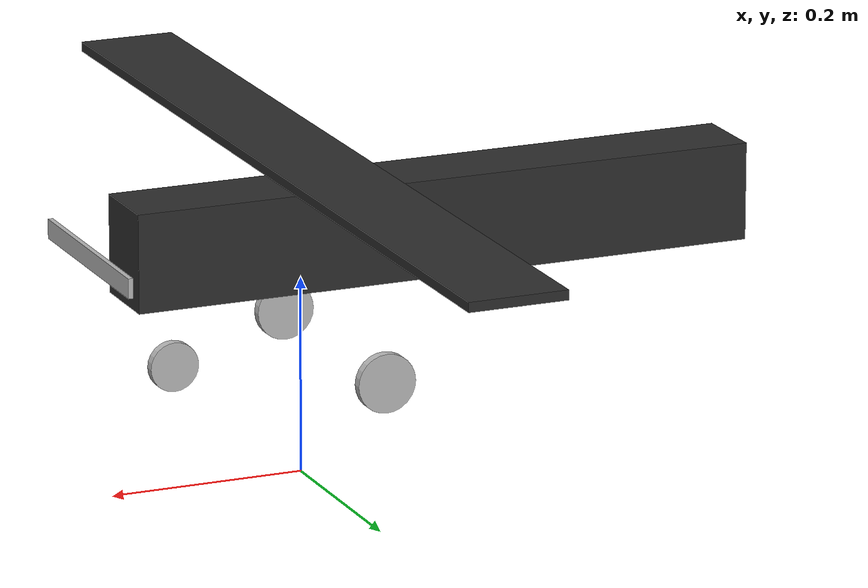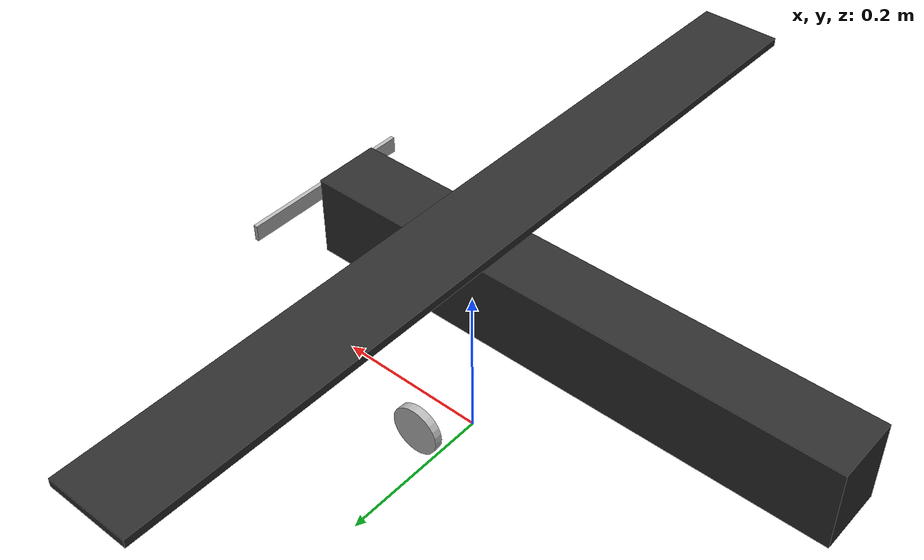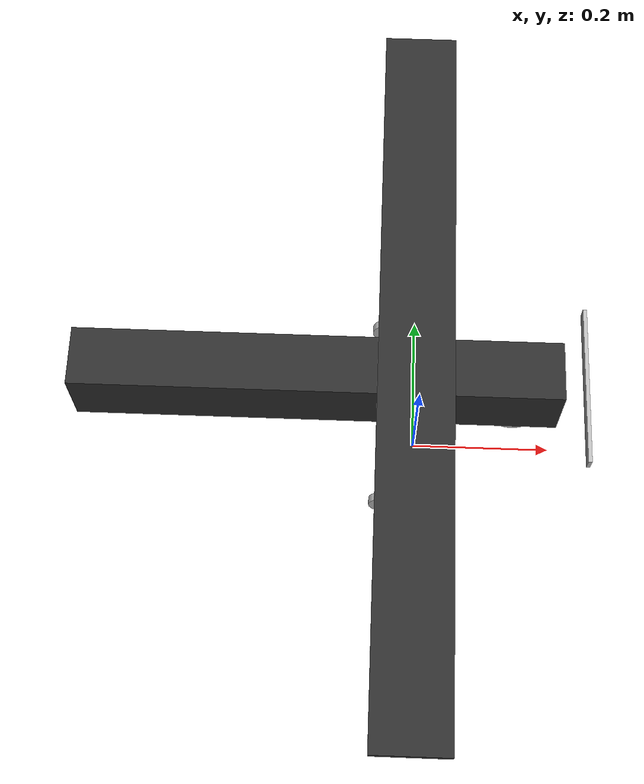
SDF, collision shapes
<?xml version="1.0"?>
<sdf version='1.9'>
  <model name='fixed-wing'>
    <pose>0 0 0.246 0 0 0</pose>
    <link name='base_link'>
      <pose>0 0 0 0 0 0</pose>
      <inertial>
        <pose>0 0 0 0 0 0</pose>
        <mass>1.5</mass>
        <inertia>
          <ixx>0.197563</ixx>
          <ixy>0</ixy>
          <ixz>0</ixz>
          <iyy>0.1458929</iyy>
          <iyz>0</iyz>
          <izz>0.1477</izz>
        </inertia>
      </inertial>
      <collision name='fuselodge_collision'>
        <pose>-.14 0 0 0 0 0</pose>
        <geometry>
          <box>
            <size>0.65 .08 0.10</size>
          </box>
        </geometry>
        <surface>
          <contact>
            <ode>
              <max_vel>10</max_vel>
              <min_depth>0.01</min_depth>
            </ode>
          </contact>
        </surface>
      </collision>
      <collision name='wings_collision'>
        <pose>-0.01 0 0.07 0 0 0</pose>
        <geometry>
          <box>
            <size>0.1 1.0 0.01</size>
          </box>
        </geometry>
        <surface>
          <contact>
            <ode>
              <max_vel>10</max_vel>
              <min_depth>0.01</min_depth>
            </ode>
          </contact>
        </surface>
      </collision>
      <visual name='base_link_visual'>
        <!-- forward left up -->
        <pose>0 0 0.154 0 0 0</pose>
        <geometry>
          <mesh>
            <scale>0.1 0.1 0.1</scale>
            <uri>model://fixed-wing/meshes/lipan_body_with_prop.obj</uri>
          </mesh>
        </geometry>
        <material>
          <ambient>.175 .175 .175 1.0</ambient>
          <diffuse>.175 .175 .175 1.0</diffuse>
        </material>
      </visual>
      <gravity>1</gravity>
      <velocity_decay />
      <self_collide>0</self_collide>
      <sensor name="imu_sensor" type="imu">
        <gz_frame_id>base_link</gz_frame_id>
        <always_on>1</always_on>
        <update_rate>250</update_rate>
        <imu>
          <angular_velocity>
            <x>
              <noise type="gaussian">
                <mean>0</mean>
                <stddev>0.0003394</stddev>
                <dynamic_bias_stddev>3.8785e-05</dynamic_bias_stddev>
                <dynamic_bias_correlation_time>1000</dynamic_bias_correlation_time>
              </noise>
            </x>
            <y>
              <noise type="gaussian">
                <mean>0</mean>
                <stddev>0.0003394</stddev>
                <dynamic_bias_stddev>3.8785e-05</dynamic_bias_stddev>
                <dynamic_bias_correlation_time>1000</dynamic_bias_correlation_time>
              </noise>
            </y>
            <z>
              <noise type="gaussian">
                <mean>0</mean>
                <stddev>0.0003394</stddev>
                <dynamic_bias_stddev>3.8785e-05</dynamic_bias_stddev>
                <dynamic_bias_correlation_time>1000</dynamic_bias_correlation_time>
              </noise>
            </z>
          </angular_velocity>
          <linear_acceleration>
            <x>
              <noise type="gaussian">
                <mean>0</mean>
                <stddev>0.004</stddev>
                <dynamic_bias_stddev>0.006</dynamic_bias_stddev>
                <dynamic_bias_correlation_time>300</dynamic_bias_correlation_time>
              </noise>
            </x>
            <y>
              <noise type="gaussian">
                <mean>0</mean>
                <stddev>0.004</stddev>
                <dynamic_bias_stddev>0.006</dynamic_bias_stddev>
                <dynamic_bias_correlation_time>300</dynamic_bias_correlation_time>
              </noise>
            </y>
            <z>
              <noise type="gaussian">
                <mean>0</mean>
                <stddev>0.004</stddev>
                <dynamic_bias_stddev>0.006</dynamic_bias_stddev>
                <dynamic_bias_correlation_time>300</dynamic_bias_correlation_time>
              </noise>
            </z>
          </linear_acceleration>
        </imu>
      </sensor>
      <sensor name="navsat_sensor" type="navsat">
        <gz_frame_id>base_link</gz_frame_id>
        <always_on>1</always_on>
        <update_rate>30</update_rate>
      </sensor>
      <sensor name="air_pressure_sensor" type="air_pressure">
        <gz_frame_id>base_link</gz_frame_id>
        <always_on>1</always_on>
        <update_rate>50</update_rate>
        <air_pressure>
          <pressure>
            <noise type="gaussian">
              <mean>0</mean>
              <stddev>0.01</stddev>
            </noise>
          </pressure>
        </air_pressure>
      </sensor>
      <sensor name="magnetometer_sensor" type="magnetometer">
        <gz_frame_id>base_link</gz_frame_id>
        <always_on>1</always_on>
        <update_rate>100</update_rate>
        <magnetometer>
          <!-- TODO: update to fix units and coordinate system when we move past Harmonic -->
          <!-- See https://github.com/gazebosim/gz-sim/pull/2460 -->
          <!-- 3mgauss RMS: NOTE: noise is in tesla but sensor reports data in gauss -->
          <!-- Noise modeled after IIS2MDC -->
          <x>
            <noise type="gaussian">
              <stddev>0.0001</stddev>
            </noise>
          </x>
          <y>
            <noise type="gaussian">
              <stddev>0.0001</stddev>
            </noise>
          </y>
          <z>
            <noise type="gaussian">
              <stddev>0.0001</stddev>
            </noise>
          </z>
        </magnetometer>
      </sensor>
    </link>
    <link name="airspeed">
      <pose>0 0 0 0 0 0</pose>
      <inertial>
        <pose>0 0 0 0 0 0</pose>
        <mass>0.015</mass>
        <inertia>
          <ixx>1e-05</ixx>
          <ixy>0</ixy>
          <ixz>0</ixz>
          <iyy>1e-05</iyy>
          <iyz>0</iyz>
          <izz>1e-05</izz>
        </inertia>
      </inertial>
    </link>
    <joint name='airspeed_joint' type='fixed'>
      <child>airspeed</child>
      <parent>base_link</parent>
    </joint>
    <link name='rotor_puller'>
      <pose>0.22 0 0.0 0 1.57079632679 0</pose>
      <inertial>
        <pose>0 0 0 0 0 0</pose>
        <mass>0.005</mass>
        <inertia>
          <ixx>9.75e-07</ixx>
          <ixy>0</ixy>
          <ixz>0</ixz>
          <iyy>0.000166704</iyy>
          <iyz>0</iyz>
          <izz>0.000167604</izz>
        </inertia>
      </inertial>
      <collision name='rotor_puller_collision'>
        <pose>0 0 0 0 -1.57079632679 0</pose>
        <geometry>
          <box>
            <size>0.005 0.22 0.02</size>
          </box>
        </geometry>
        <surface>
          <contact>
            <ode />
          </contact>
          <friction>
            <ode />
          </friction>
        </surface>
      </collision>

      <gravity>1</gravity>
      <velocity_decay />
      <self_collide>0</self_collide>
    </link>
    <joint name='rotor_puller_joint' type='revolute'>
      <child>rotor_puller</child>
      <parent>base_link</parent>
      <axis>
        <xyz>0 0 1</xyz>
        <limit>
          <lower>-1e+16</lower>
          <upper>1e+16</upper>
        </limit>
        <dynamics>
          <spring_reference>0</spring_reference>
          <spring_stiffness>0</spring_stiffness>
        </dynamics>
      </axis>
    </joint>
    <link name="left_elevon">
      <inertial>
        <mass>0.00000001</mass>
        <inertia>
          <ixx>0.000001</ixx>
          <ixy>0.0</ixy>
          <iyy>0.000001</iyy>
          <ixz>0.0</ixz>
          <iyz>0.0</iyz>
          <izz>0.000001</izz>
        </inertia>
        <pose>0 0.3 0 0.00 0 0.0</pose>
      </inertial>
    </link>
    <link name="LeftWheel">
      <pose relative_to="LeftWheelJoint">0 0 0 0 0 0</pose>
      <inertial>
        <mass>.05</mass>
        <inertia>
          <ixx>0.00003331</ixx>
          <ixy>0</ixy>
          <ixz>0</ixz>
          <iyy>0.0000204</iyy>
          <iyz>0</iyz>
          <izz>0.0000204</izz>
        </inertia>
      </inertial>
      <gravity>true</gravity>
      <velocity_decay />
      <collision name="LeftWheelCollision">
        <pose>0 0 0 -1.57079632679 0 0</pose>
        <geometry>
          <cylinder>
            <length>0.01</length>
            <radius>0.03</radius>
          </cylinder>
        </geometry>
        <surface>
          <friction>
            <ode>
              <mu>1.0</mu>
              <mu2>0.5</mu2>
              <fdir1>0 0 1</fdir1>
            </ode>
          </friction>
        </surface>
      </collision>
    </link>
    <link name="RightWheel">
      <pose relative_to="RightWheelJoint">0 0 0 0 0 0</pose>
      <inertial>
        <mass>.05</mass>
        <inertia>
          <ixx>0.00003331</ixx>
          <ixy>0</ixy>
          <ixz>0</ixz>
          <iyy>0.0000204</iyy>
          <iyz>0</iyz>
          <izz>0.0000204</izz>
        </inertia>
      </inertial>
      <gravity>true</gravity>
      <velocity_decay />
      <collision name="RightWheelCollision">
        <pose>0 0 0 -1.57079632679 0 0</pose>
        <geometry>
          <cylinder>
            <length>0.01</length>
            <radius>0.03</radius>
          </cylinder>
        </geometry>
        <surface>
          <friction>
            <ode>
              <mu>1.0</mu>
              <mu2>0.5</mu2>
              <fdir1>0 0 1</fdir1>
            </ode>
          </friction>
        </surface>
      </collision>
    </link>
    <link name="CenterWheel">
      <pose relative_to="CenterWheelJoint">0 0 0 0 0 0</pose>
      <inertial>
        <mass>.05</mass>
        <inertia>
          <ixx>0.00003331</ixx>
          <ixy>0</ixy>
          <ixz>0</ixz>
          <iyy>0.0000204</iyy>
          <iyz>0</iyz>
          <izz>0.0000204</izz>
        </inertia>
      </inertial>
      <gravity>true</gravity>
      <velocity_decay />
      <collision name="CenterWheelCollision">
        <pose>0 0 0 -1.57079632679 0 0</pose>
        <geometry>
          <cylinder>
            <length>0.01</length>
            <radius>0.025</radius>
          </cylinder>
        </geometry>
        <surface>
          <friction>
            <ode>
              <mu>1.0</mu>
              <mu2>0.5</mu2>
              <fdir1>0 0 1</fdir1>
            </ode>
          </friction>
        </surface>
      </collision>
    </link>
    <link name="right_elevon">
      <inertial>
        <mass>0.00000001</mass>
        <inertia>
          <ixx>0.000001</ixx>
          <ixy>0.0</ixy>
          <iyy>0.000001</iyy>
          <ixz>0.0</ixz>
          <iyz>0.0</iyz>
          <izz>0.000001</izz>
        </inertia>
        <pose>0 -0.3 0 0.00 0 0.0</pose>
      </inertial>
    </link>
    <link name="left_flap">
      <inertial>
        <mass>0.00000001</mass>
        <inertia>
          <ixx>0.000001</ixx>
          <ixy>0.0</ixy>
          <iyy>0.000001</iyy>
          <ixz>0.0</ixz>
          <iyz>0.0</iyz>
          <izz>0.000001</izz>
        </inertia>
        <pose>0 0.15 0 0.00 0 0.0</pose>
      </inertial>
    </link>
    <link name="right_flap">
      <inertial>
        <mass>0.00000001</mass>
        <inertia>
          <ixx>0.000001</ixx>
          <ixy>0.0</ixy>
          <iyy>0.000001</iyy>
          <ixz>0.0</ixz>
          <iyz>0.0</iyz>
          <izz>0.000001</izz>
        </inertia>
        <pose>0 -0.15 0 0.00 0 0.0</pose>
      </inertial>
    </link>
    <link name="elevator">
      <inertial>
        <mass>0.00000001</mass>
        <inertia>
          <ixx>0.000001</ixx>
          <ixy>0.0</ixy>
          <iyy>0.000001</iyy>
          <ixz>0.0</ixz>
          <iyz>0.0</iyz>
          <izz>0.000001</izz>
        </inertia>
        <pose> -0.5 0 0 0.00 0 0.0</pose>
      </inertial>
    </link>
    <link name="rudder">
      <inertial>
        <mass>0.00000001</mass>
        <inertia>
          <ixx>0.000001</ixx>
          <ixy>0.0</ixy>
          <iyy>0.000001</iyy>
          <ixz>0.0</ixz>
          <iyz>0.0</iyz>
          <izz>0.000001</izz>
        </inertia>
        <pose>-0.5 0 0.05 0 0 0 </pose>
      </inertial>
    </link>
    <joint name='servo_0' type='revolute'>
      <parent>base_link</parent>
      <child>left_elevon</child>
      <pose>-0.07 0.4 0.08 0.00 0 0.0</pose>
      <axis>
        <xyz>0 1 0</xyz>
        <limit>
          <lower>-0.78</lower>
          <upper>0.78</upper>
        </limit>
        <dynamics>
          <damping>1.000</damping>
        </dynamics>
      </axis>
      <physics>
        <ode>
          <implicit_spring_damper>1</implicit_spring_damper>
        </ode>
      </physics>
    </joint>
    <joint name='servo_1' type='revolute'>
      <parent>base_link</parent>
      <child>right_elevon</child>
      <pose>-0.07 -0.4 0.08 0.00 0 0.0</pose>
      <axis>
        <xyz>0 1 0</xyz>
        <limit>
          <lower>-0.78</lower>
          <upper>0.78</upper>
        </limit>
        <dynamics>
          <damping>1.000</damping>
        </dynamics>
      </axis>
      <physics>
        <ode>
          <implicit_spring_damper>1</implicit_spring_damper>
        </ode>
      </physics>
    </joint>
    <joint name='left_flap_joint' type='revolute'>
      <parent>base_link</parent>
      <child>left_flap</child>
      <pose>-0.07 0.2 0.08 0.00 0 0.0</pose>
      <axis>
        <xyz>0 1 0</xyz>
        <limit>
          <lower>-0.78</lower>
          <upper>0.78</upper>
        </limit>
        <dynamics>
          <damping>1.000</damping>
        </dynamics>
      </axis>
      <physics>
        <ode>
          <implicit_spring_damper>1</implicit_spring_damper>
        </ode>
      </physics>
    </joint>
    <joint name='right_flap_joint' type='revolute'>
      <parent>base_link</parent>
      <child>right_flap</child>
      <pose>-0.07 -0.2 0.08 0.00 0 0.0</pose>
      <axis>
        <xyz>0 1 0</xyz>
        <limit>
          <lower>-0.78</lower>
          <upper>0.78</upper>
        </limit>
        <dynamics>
          <damping>1.000</damping>
        </dynamics>
      </axis>
      <physics>
        <ode>
          <implicit_spring_damper>1</implicit_spring_damper>
        </ode>
      </physics>
    </joint>
    <joint name='servo_2' type='revolute'>
      <parent>base_link</parent>
      <child>elevator</child>
      <pose> -0.5 0 0 0 0 0</pose>
      <axis>
        <xyz>0 1 0</xyz>
        <limit>
          <lower>-0.78</lower>
          <upper>0.78</upper>
        </limit>
        <dynamics>
          <damping>1.000</damping>
        </dynamics>
      </axis>
      <physics>
        <ode>
          <implicit_spring_damper>1</implicit_spring_damper>
        </ode>
      </physics>
    </joint>
    <joint name='rudder_joint' type='revolute'>
      <parent>base_link</parent>
      <child>rudder</child>
      <pose>-0.5 0 0.05 0.00 0 0.0</pose>
      <axis>
        <xyz>0 0 1</xyz>
        <limit>
          <lower>-0.78</lower>
          <upper>0.78</upper>
        </limit>
        <dynamics>
          <damping>1.000</damping>
        </dynamics>
      </axis>
      <physics>
        <ode>
          <implicit_spring_damper>1</implicit_spring_damper>
        </ode>
      </physics>
    </joint>
    <joint name="LeftWheelJoint" type="revolute">
      <parent>base_link</parent>
      <child>LeftWheel</child>
      <pose relative_to="base_link">-.035 .13 -0.12 0 0 0</pose>
      <axis>
        <xyz>0 1 0</xyz>
        <limit>
          <lower>-1.79769e+308</lower>
          <upper>1.79769e+308</upper>
        </limit>
        <dynamics>
          <friction>0.02</friction>
          <spring_reference>0</spring_reference>
          <spring_stiffness>0</spring_stiffness>
        </dynamics>
      </axis>
    </joint>
    <joint name="RightWheelJoint" type="revolute">
      <parent>base_link</parent>
      <child>RightWheel</child>
      <pose relative_to="base_link">-.035 -.13 -0.12 0 0 0</pose>
      <axis>
        <xyz>0 1 0</xyz>
        <limit>
          <lower>-1.79769e+308</lower>
          <upper>1.79769e+308</upper>
        </limit>
        <dynamics>
          <friction>0.02</friction>
          <spring_reference>0</spring_reference>
          <spring_stiffness>0</spring_stiffness>
        </dynamics>
      </axis>
    </joint>
    <joint name="CenterWheelJoint" type="revolute">
      <parent>base_link</parent>
      <child>CenterWheel</child>
      <pose relative_to="base_link">.135 0 -0.12 0 0 0</pose>
      <axis>
        <xyz>0 1 0</xyz>
        <limit>
          <lower>-1.79769e+308</lower>
          <upper>1.79769e+308</upper>
        </limit>
        <dynamics>
          <friction>0.02</friction>
          <spring_reference>0</spring_reference>
          <spring_stiffness>0</spring_stiffness>
        </dynamics>
      </axis>
    </joint>
    <plugin filename="gz-sim-lift-drag-system" name="gz::sim::systems::LiftDrag">
      <a0>0.05984281113</a0>
      <cla>4.752798721</cla>
      <cda>1.5</cda>
      <cma>0.0</cma>
      <alpha_stall>0.3391428111</alpha_stall>
      <cla_stall>-3.85</cla_stall>
      <cda_stall>-0.9233984055</cda_stall>
      <cma_stall>0</cma_stall>
      <cp>-0.05 0.45 0.05</cp>
      <area>0.6</area>
      <air_density>1.2041</air_density>
      <forward>1 0 0</forward>
      <upward>0 0 1</upward>
      <link_name>base_link</link_name>
      <control_joint_name>servo_0</control_joint_name>
      <control_joint_rad_to_cl>-0.3</control_joint_rad_to_cl>
    </plugin>
    <plugin
      filename="gz-sim-joint-position-controller-system"
      name="gz::sim::systems::JointPositionController">
      <joint_name>servo_0</joint_name>
      <sub_topic>servo_0</sub_topic>
      <p_gain>10.0</p_gain>
    </plugin>
    <plugin filename="gz-sim-lift-drag-system" name="gz::sim::systems::LiftDrag">
      <a0>0.05984281113</a0>
      <cla>4.752798721</cla>
      <cda>1.5</cda>
      <cma>0.0</cma>
      <alpha_stall>0.3391428111</alpha_stall>
      <cla_stall>-3.85</cla_stall>
      <cda_stall>-0.9233984055</cda_stall>
      <cma_stall>0</cma_stall>
      <cp>-0.05 -0.45 0.05</cp>
      <area>0.6</area>
      <air_density>1.2041</air_density>
      <forward>1 0 0</forward>
      <upward>0 0 1</upward>
      <link_name>base_link</link_name>
      <control_joint_name>servo_1</control_joint_name>
      <control_joint_rad_to_cl>-0.3</control_joint_rad_to_cl>
    </plugin>
    <plugin
      filename="gz-sim-joint-position-controller-system"
      name="gz::sim::systems::JointPositionController">
      <joint_name>servo_1</joint_name>
      <sub_topic>servo_1</sub_topic>
      <p_gain>10.0</p_gain>
    </plugin>
    <plugin filename="gz-sim-lift-drag-system" name="gz::sim::systems::LiftDrag">
      <a0>0.05984281113</a0>
      <cla>4.752798721</cla>
      <cda>0.6417112299</cda>
      <cma>0.0</cma>
      <alpha_stall>0.3391428111</alpha_stall>
      <cla_stall>-3.85</cla_stall>
      <cda_stall>-0.9233984055</cda_stall>
      <cma_stall>0</cma_stall>
      <cp>-0.05 0.15 0.05</cp>
      <area>0.6</area>
      <air_density>1.2041</air_density>
      <forward>1 0 0</forward>
      <upward>0 0 1</upward>
      <link_name>base_link</link_name>
      <control_joint_name>left_flap_joint</control_joint_name>
      <control_joint_rad_to_cl>-0.1</control_joint_rad_to_cl>
    </plugin>
    <plugin filename="gz-sim-lift-drag-system" name="gz::sim::systems::LiftDrag">
      <a0>0.05984281113</a0>
      <cla>4.752798721</cla>
      <cda>0.6417112299</cda>
      <cma>0.0</cma>
      <alpha_stall>0.3391428111</alpha_stall>
      <cla_stall>-3.85</cla_stall>
      <cda_stall>-0.9233984055</cda_stall>
      <cma_stall>0</cma_stall>
      <cp>-0.05 -0.15 0.05</cp>
      <area>0.6</area>
      <air_density>1.2041</air_density>
      <forward>1 0 0</forward>
      <upward>0 0 1</upward>
      <link_name>base_link</link_name>
      <control_joint_name>right_flap_joint</control_joint_name>
      <control_joint_rad_to_cl>-0.1</control_joint_rad_to_cl>
    </plugin>
    <plugin filename="gz-sim-lift-drag-system" name="gz::sim::systems::LiftDrag">
      <a0>-0.2</a0>
      <cla>4.752798721</cla>
      <cda>0.6417112299</cda>
      <cma>0.0</cma>
      <alpha_stall>0.3391428111</alpha_stall>
      <cla_stall>-3.85</cla_stall>
      <cda_stall>-0.9233984055</cda_stall>
      <cma_stall>0</cma_stall>
      <cp>-0.5 0 0</cp>
      <area>0.01</area>
      <air_density>1.2041</air_density>
      <forward>1 0 0</forward>
      <upward>0 0 1</upward>
      <link_name>base_link</link_name>
      <control_joint_name>servo_2</control_joint_name>
      <control_joint_rad_to_cl>-4.0</control_joint_rad_to_cl>
    </plugin>
    <plugin
      filename="gz-sim-joint-position-controller-system"
      name="gz::sim::systems::JointPositionController">
      <joint_name>servo_2</joint_name>
      <sub_topic>servo_2</sub_topic>
      <p_gain>10.0</p_gain>
    </plugin>
    <plugin filename="gz-sim-lift-drag-system" name="gz::sim::systems::LiftDrag">
      <a0>0.0</a0>
      <cla>4.752798721</cla>
      <cda>0.6417112299</cda>
      <cma>0.0</cma>
      <alpha_stall>0.3391428111</alpha_stall>
      <cla_stall>-3.85</cla_stall>
      <cda_stall>-0.9233984055</cda_stall>
      <cma_stall>0</cma_stall>
      <cp>-0.5 0 0.05</cp>
      <area>0.1</area>
      <air_density>1.2041</air_density>
      <forward>1 0 0</forward>
      <upward>0 1 0</upward>
      <link_name>base_link</link_name>
      <control_joint_name>rudder_joint</control_joint_name>
      <control_joint_rad_to_cl>0.8</control_joint_rad_to_cl>
    </plugin>
    <plugin
      filename="gz-sim-joint-position-controller-system"
      name="gz::sim::systems::JointPositionController">
      <joint_name>rudder_joint</joint_name>
      <sub_topic>servo_3</sub_topic>
      <p_gain>10.0</p_gain>
    </plugin>
    <plugin filename="gz-sim-multicopter-motor-model-system"
      name="gz::sim::systems::MulticopterMotorModel">
      <jointName>rotor_puller_joint</jointName>
      <linkName>rotor_puller</linkName>
      <turningDirection>cw</turningDirection>
      <timeConstantUp>0.0125</timeConstantUp>
      <timeConstantDown>0.025</timeConstantDown>
      <maxRotVelocity>1000</maxRotVelocity>
      <motorConstant>1.2e-05</motorConstant>
      <momentConstant>0.016</momentConstant>
      <commandSubTopic>command/motor_speed</commandSubTopic>
      <motorNumber>0</motorNumber>
      <rotorDragCoefficient>8.06428e-05</rotorDragCoefficient>
      <rollingMomentCoefficient>1e-06</rollingMomentCoefficient>
      <rotorVelocitySlowdownSim>10</rotorVelocitySlowdownSim>
      <motorType>velocity</motorType>
    </plugin>
    <static>0</static>
  </model>
</sdf>
